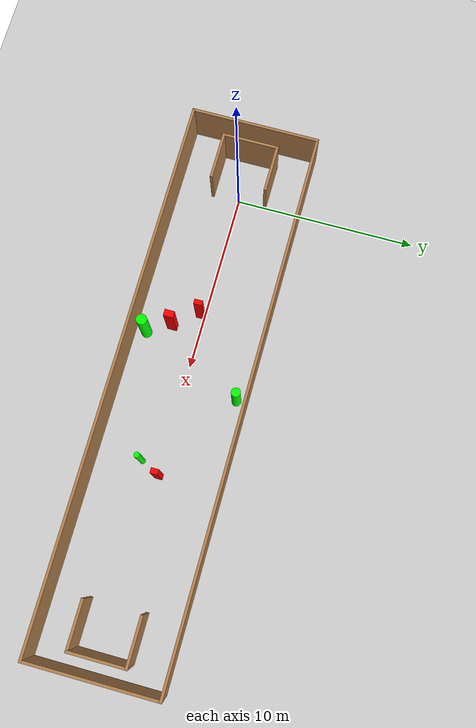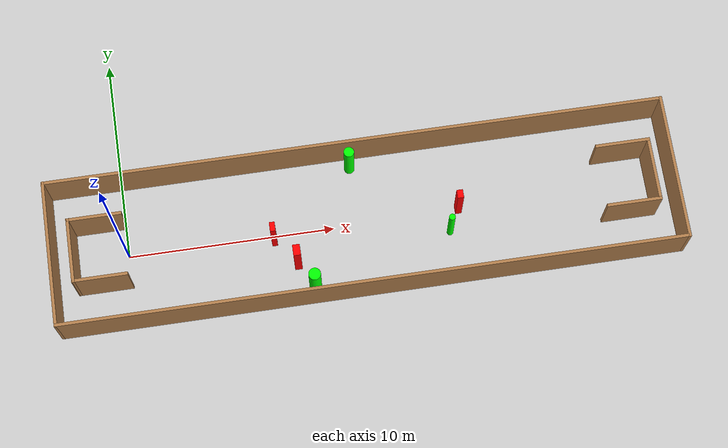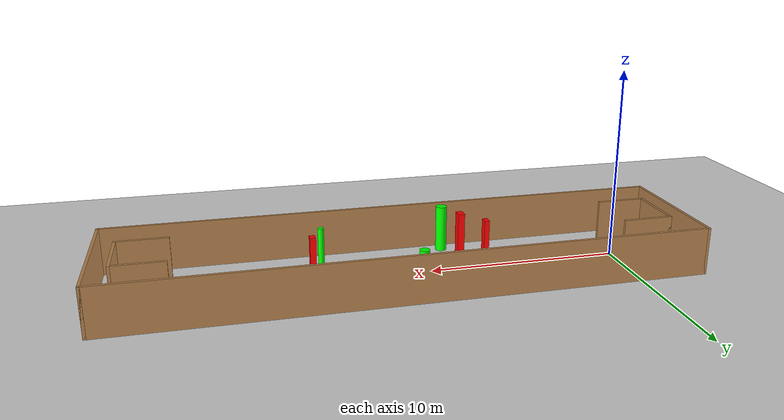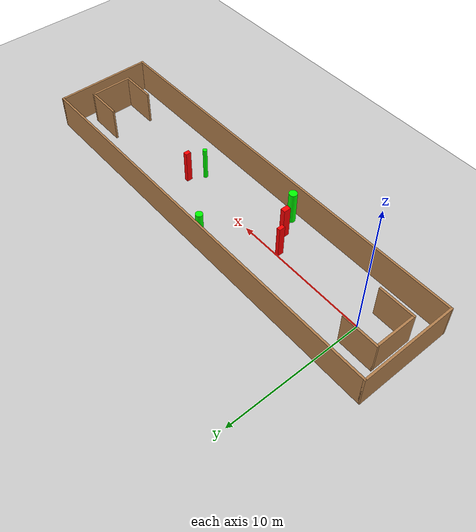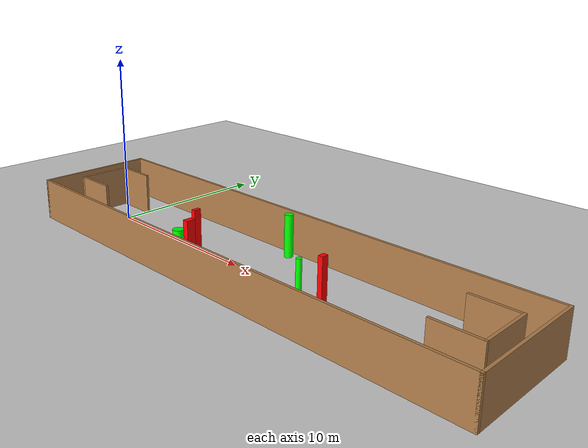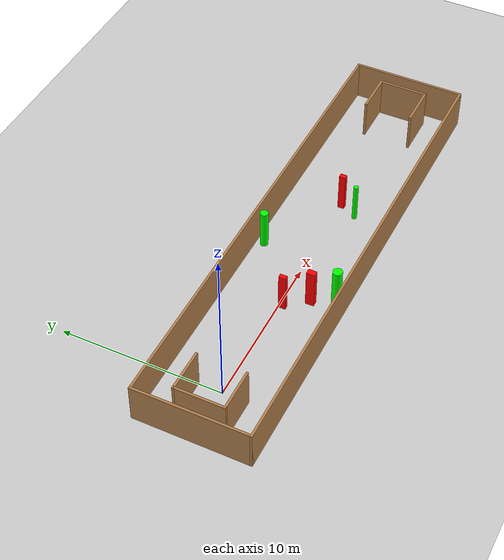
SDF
<sdf version="1.7">
 <world name="default">
  <light name="sun" type="directional">
   <pose>0 0 10 0 -0 0</pose>
   <diffuse>0.8 0.8 0.8 1</diffuse>
   <specular>0.2 0.2 0.2 1</specular>
   <attenuation>
    <range>1000</range>
    <constant>0.9</constant>
    <linear>0.01</linear>
    <quadratic>0.001</quadratic>
   </attenuation>
   <direction>-0.5 0.1 -0.9</direction>
   <spot><inner_angle>0</inner_angle><outer_angle>0</outer_angle><falloff>0</falloff></spot>
  </light>
  <model name="ground_plane">
   <static>1</static>
   <link name="link">
    <collision name="collision">
     <geometry><plane><normal>0 0 1</normal><size>100 100</size></plane></geometry>
     <surface>
      <contact><collide_bitmask>65535</collide_bitmask></contact>
      <friction><ode><mu>100</mu><mu2>50</mu2></ode></friction>
     </surface>
    </collision>
    <visual name="visual">
     <cast_shadows>0</cast_shadows>
     <geometry><plane><normal>0 0 1</normal><size>100 100</size></plane></geometry>
     <material>
      <script><uri>file://media/materials/scripts/gazebo.material</uri><name>Gazebo/Grey</name></script>
     </material>
    </visual>
   </link>
  </model>
  <gravity>0 0 -9.8</gravity>
  <magnetic_field>6e-06 2.3e-05 -4.2e-05</magnetic_field>
  <atmosphere type="adiabatic"/>
  <physics type="ode">
   <max_step_size>0.001</max_step_size>
   <real_time_factor>1</real_time_factor>
   <real_time_update_rate>1000</real_time_update_rate>
  </physics>
  <scene><ambient>0.4 0.4 0.4 1</ambient><background>0.7 0.7 0.7 1</background><shadows>1</shadows></scene>
  <spherical_coordinates>
   <surface_model>EARTH_WGS84</surface_model>
   <latitude_deg>0</latitude_deg>
   <longitude_deg>0</longitude_deg>
   <elevation>0</elevation>
   <heading_deg>0</heading_deg>
  </spherical_coordinates>
  <model name="my_base_walls">
   <link name="Wall_0">
    <collision name="Wall_0_Collision">
     <geometry><box><size>7.15 0.15 2.5</size></box></geometry>
     <pose>0 0 1.25 0 -0 0</pose>
    </collision>
    <visual name="Wall_0_Visual">
     <pose>0 0 1.25 0 -0 0</pose>
     <geometry><box><size>7.15 0.15 2.5</size></box></geometry>
     <material>
      <script><uri>file://media/materials/scripts/gazebo.material</uri><name>Gazebo/Wood</name></script>
      <ambient>1 1 1 1</ambient>
     </material>
     <meta><layer>0</layer></meta>
    </visual>
    <pose>-15 0 0 0 -0 1.5708</pose>
   </link>
   <link name="Wall_10">
    <collision name="Wall_10_Collision">
     <geometry><box><size>2.65 0.15 2.5</size></box></geometry>
     <pose>0 0 1.25 0 -0 0</pose>
    </collision>
    <visual name="Wall_10_Visual">
     <pose>0 0 1.25 0 -0 0</pose>
     <geometry><box><size>2.65 0.15 2.5</size></box></geometry>
     <material>
      <script><uri>file://media/materials/scripts/gazebo.material</uri><name>Gazebo/Wood</name></script>
      <ambient>1 1 1 1</ambient>
     </material>
     <meta><layer>0</layer></meta>
    </visual>
    <pose>-12.75 -1.5 0 0 -0 0</pose>
   </link>
   <link name="Wall_12">
    <collision name="Wall_12_Collision">
     <geometry><box><size>2.65 0.15 2.5</size></box></geometry>
     <pose>0 0 1.25 0 -0 0</pose>
    </collision>
    <visual name="Wall_12_Visual">
     <pose>0 0 1.25 0 -0 0</pose>
     <geometry><box><size>2.65 0.15 2.5</size></box></geometry>
     <material>
      <script><uri>file://media/materials/scripts/gazebo.material</uri><name>Gazebo/Wood</name></script>
      <ambient>1 1 1 1</ambient>
     </material>
     <meta><layer>0</layer></meta>
    </visual>
    <pose>-12.75 1.5 0 0 -0 0</pose>
   </link>
   <link name="Wall_14">
    <collision name="Wall_14_Collision">
     <geometry><box><size>3.15 0.15 2.5</size></box></geometry>
     <pose>0 0 1.25 0 -0 0</pose>
    </collision>
    <visual name="Wall_14_Visual">
     <pose>0 0 1.25 0 -0 0</pose>
     <geometry><box><size>3.15 0.15 2.5</size></box></geometry>
     <material>
      <script><uri>file://media/materials/scripts/gazebo.material</uri><name>Gazebo/Wood</name></script>
      <ambient>1 1 1 1</ambient>
     </material>
     <meta><layer>0</layer></meta>
    </visual>
    <pose>14 0 0 0 -0 -1.5708</pose>
   </link>
   <link name="Wall_15">
    <collision name="Wall_15_Collision">
     <geometry><box><size>2.65 0.15 2.5</size></box></geometry>
     <pose>0 0 1.25 0 -0 0</pose>
    </collision>
    <visual name="Wall_15_Visual">
     <pose>0 0 1.25 0 -0 0</pose>
     <geometry><box><size>2.65 0.15 2.5</size></box></geometry>
     <material>
      <script><uri>file://media/materials/scripts/gazebo.material</uri><name>Gazebo/Wood</name></script>
      <ambient>1 1 1 1</ambient>
     </material>
     <meta><layer>0</layer></meta>
    </visual>
    <pose>12.75 -1.5 0 0 -0 3.14159</pose>
   </link>
   <link name="Wall_17">
    <collision name="Wall_17_Collision">
     <geometry><box><size>2.65 0.15 2.5</size></box></geometry>
     <pose>0 0 1.25 0 -0 0</pose>
    </collision>
    <visual name="Wall_17_Visual">
     <pose>0 0 1.25 0 -0 0</pose>
     <geometry><box><size>2.65 0.15 2.5</size></box></geometry>
     <material>
      <script><uri>file://media/materials/scripts/gazebo.material</uri><name>Gazebo/Wood</name></script>
      <ambient>1 1 1 1</ambient>
     </material>
     <meta><layer>0</layer></meta>
    </visual>
    <pose>12.75 1.5 0 0 -0 3.14159</pose>
   </link>
   <link name="Wall_2">
    <collision name="Wall_2_Collision">
     <geometry><box><size>30.15 0.15 2.5</size></box></geometry>
     <pose>0 0 1.25 0 -0 0</pose>
    </collision>
    <visual name="Wall_2_Visual">
     <pose>0 0 1.25 0 -0 0</pose>
     <geometry><box><size>30.15 0.15 2.5</size></box></geometry>
     <material>
      <script><uri>file://media/materials/scripts/gazebo.material</uri><name>Gazebo/Wood</name></script>
      <ambient>1 1 1 1</ambient>
     </material>
     <meta><layer>0</layer></meta>
    </visual>
    <pose>-0 -3.5 0 0 -0 0</pose>
   </link>
   <link name="Wall_4">
    <collision name="Wall_4_Collision">
     <geometry><box><size>30.15 0.15 2.5</size></box></geometry>
     <pose>0 0 1.25 0 -0 0</pose>
    </collision>
    <visual name="Wall_4_Visual">
     <pose>0 0 1.25 0 -0 0</pose>
     <geometry><box><size>30.15 0.15 2.5</size></box></geometry>
     <material>
      <script><uri>file://media/materials/scripts/gazebo.material</uri><name>Gazebo/Wood</name></script>
      <ambient>1 1 1 1</ambient>
     </material>
     <meta><layer>0</layer></meta>
    </visual>
    <pose>-0 3.5 0 0 -0 0</pose>
   </link>
   <link name="Wall_6">
    <collision name="Wall_6_Collision">
     <geometry><box><size>7.15 0.15 2.5</size></box></geometry>
     <pose>0 0 1.25 0 -0 0</pose>
    </collision>
    <visual name="Wall_6_Visual">
     <pose>0 0 1.25 0 -0 0</pose>
     <geometry><box><size>7.15 0.15 2.5</size></box></geometry>
     <material>
      <script><uri>file://media/materials/scripts/gazebo.material</uri><name>Gazebo/Wood</name></script>
      <ambient>1 1 1 1</ambient>
     </material>
     <meta><layer>0</layer></meta>
    </visual>
    <pose>15 0 0 0 -0 -1.5708</pose>
   </link>
   <link name="Wall_9">
    <collision name="Wall_9_Collision">
     <geometry><box><size>3.15 0.15 2.5</size></box></geometry>
     <pose>0 0 1.25 0 -0 0</pose>
    </collision>
    <visual name="Wall_9_Visual">
     <pose>0 0 1.25 0 -0 0</pose>
     <geometry><box><size>3.15 0.15 2.5</size></box></geometry>
     <material>
      <script><uri>file://media/materials/scripts/gazebo.material</uri><name>Gazebo/Wood</name></script>
      <ambient>1 1 1 1</ambient>
     </material>
     <meta><layer>0</layer></meta>
    </visual>
    <pose>-14 0 0 0 -0 -1.5708</pose>
   </link>
   <static>1</static>
   <pose>11.5 0 0 0 -0 0</pose>
  </model>
  <model name="cylinder1">
   <static>1</static>
   <link name="link">
    <inertial>
     <mass>1</mass>
     <inertia><ixx>0.5</ixx><ixy>0</ixy><ixz>0</ixz><iyy>0.5</iyy><iyz>0</iyz><izz>1</izz></inertia>
    </inertial>
    <collision name="collision">
     <geometry><cylinder><radius>0.2500078309602987</radius><length>2.5</length></cylinder></geometry>
    </collision>
    <visual name="visual">
     <geometry><cylinder><radius>0.2500078309602987</radius><length>2.5</length></cylinder></geometry>
     <material>
      <ambient>0 1 0 1</ambient>
      <diffuse>0 1 0 1</diffuse>
      <specular>0.1 0.1 0.1 1</specular>
      <emissive>0 0 0 0</emissive>
     </material>
    </visual>
   </link>
   <pose>11.172119809496271 2.9392808905163452 1.25 0 0 0</pose>
  </model>
  <model name="cylinder2">
   <static>1</static>
   <link name="link">
    <inertial>
     <mass>1</mass>
     <inertia><ixx>0.5</ixx><ixy>0</ixy><ixz>0</ixz><iyy>0.5</iyy><iyz>0</iyz><izz>1</izz></inertia>
    </inertial>
    <collision name="collision">
     <geometry><cylinder><radius>0.29350657538131586</radius><length>2.5</length></cylinder></geometry>
    </collision>
    <visual name="visual">
     <geometry><cylinder><radius>0.29350657538131586</radius><length>2.5</length></cylinder></geometry>
     <material>
      <ambient>0 1 0 1</ambient>
      <diffuse>0 1 0 1</diffuse>
      <specular>0.1 0.1 0.1 1</specular>
      <emissive>0 0 0 0</emissive>
     </material>
    </visual>
   </link>
   <pose>8.72672679626877 -2.811726341472937 1.25 0 0 0</pose>
  </model>
  <model name="cylinder3">
   <static>1</static>
   <link name="link">
    <inertial>
     <mass>1</mass>
     <inertia><ixx>0.5</ixx><ixy>0</ixy><ixz>0</ixz><iyy>0.5</iyy><iyz>0</iyz><izz>1</izz></inertia>
    </inertial>
    <collision name="collision">
     <geometry><cylinder><radius>0.15365177008719724</radius><length>2.5</length></cylinder></geometry>
    </collision>
    <visual name="visual">
     <geometry><cylinder><radius>0.15365177008719724</radius><length>2.5</length></cylinder></geometry>
     <material>
      <ambient>0 1 0 1</ambient>
      <diffuse>0 1 0 1</diffuse>
      <specular>0.1 0.1 0.1 1</specular>
      <emissive>0 0 0 0</emissive>
     </material>
    </visual>
   </link>
   <pose>15.558351262393778 -0.9978170472322798 1.25 0 0 0</pose>
  </model>
  <model name="box1">
   <static>1</static>
   <link name="link">
    <inertial>
     <mass>1</mass>
     <inertia><ixx>0.083</ixx><ixy>0</ixy><ixz>0</ixz><iyy>0.083</iyy><iyz>0</iyz><izz>0.083</izz></inertia>
    </inertial>
    <collision name="collision">
     <geometry><box><size>0.295848741662942 0.4019150749121956 2.5</size></box></geometry>
    </collision>
    <visual name="visual">
     <geometry><box><size>0.295848741662942 0.4019150749121956 2.5</size></box></geometry>
     <material>
      <ambient>1 0 0 1</ambient>
      <diffuse>1 0 0 1</diffuse>
      <specular>0.1 0.1 0.1 1</specular>
      <emissive>0 0 0 0</emissive>
     </material>
    </visual>
    <sensor name="my_contact" type="contact">
     <contact><collision>box_collision</collision><topic>__default_topic__</topic></contact>
    </sensor>
   </link>
   <pose>16.113623336170445 0.08392987505592853 1.25 0 0 0</pose>
  </model>
  <model name="box2">
   <static>1</static>
   <link name="link">
    <inertial>
     <mass>1</mass>
     <inertia><ixx>0.083</ixx><ixy>0</ixy><ixz>0</ixz><iyy>0.083</iyy><iyz>0</iyz><izz>0.083</izz></inertia>
    </inertial>
    <collision name="collision">
     <geometry><box><size>0.35286263371354776 0.5282161221712632 2.5</size></box></geometry>
    </collision>
    <visual name="visual">
     <geometry><box><size>0.35286263371354776 0.5282161221712632 2.5</size></box></geometry>
     <material>
      <ambient>1 0 0 1</ambient>
      <diffuse>1 0 0 1</diffuse>
      <specular>0.1 0.1 0.1 1</specular>
      <emissive>0 0 0 0</emissive>
     </material>
    </visual>
    <sensor name="my_contact" type="contact">
     <contact><collision>box_collision</collision><topic>__default_topic__</topic></contact>
    </sensor>
   </link>
   <pose>8.042199107335463 -1.5299664613312212 1.25 0 0 0</pose>
  </model>
  <model name="box3">
   <static>1</static>
   <link name="link">
    <inertial>
     <mass>1</mass>
     <inertia><ixx>0.083</ixx><ixy>0</ixy><ixz>0</ixz><iyy>0.083</iyy><iyz>0</iyz><izz>0.083</izz></inertia>
    </inertial>
    <collision name="collision">
     <geometry><box><size>0.25989716858173084 0.44771422531799826 2.5</size></box></geometry>
    </collision>
    <visual name="visual">
     <geometry><box><size>0.25989716858173084 0.44771422531799826 2.5</size></box></geometry>
     <material>
      <ambient>1 0 0 1</ambient>
      <diffuse>1 0 0 1</diffuse>
      <specular>0.1 0.1 0.1 1</specular>
      <emissive>0 0 0 0</emissive>
     </material>
    </visual>
    <sensor name="my_contact" type="contact">
     <contact><collision>box_collision</collision><topic>__default_topic__</topic></contact>
    </sensor>
   </link>
   <pose>7.0582401751671835 -0.22871969427543126 1.25 0 0 0</pose>
  </model>
 </world>
</sdf>
